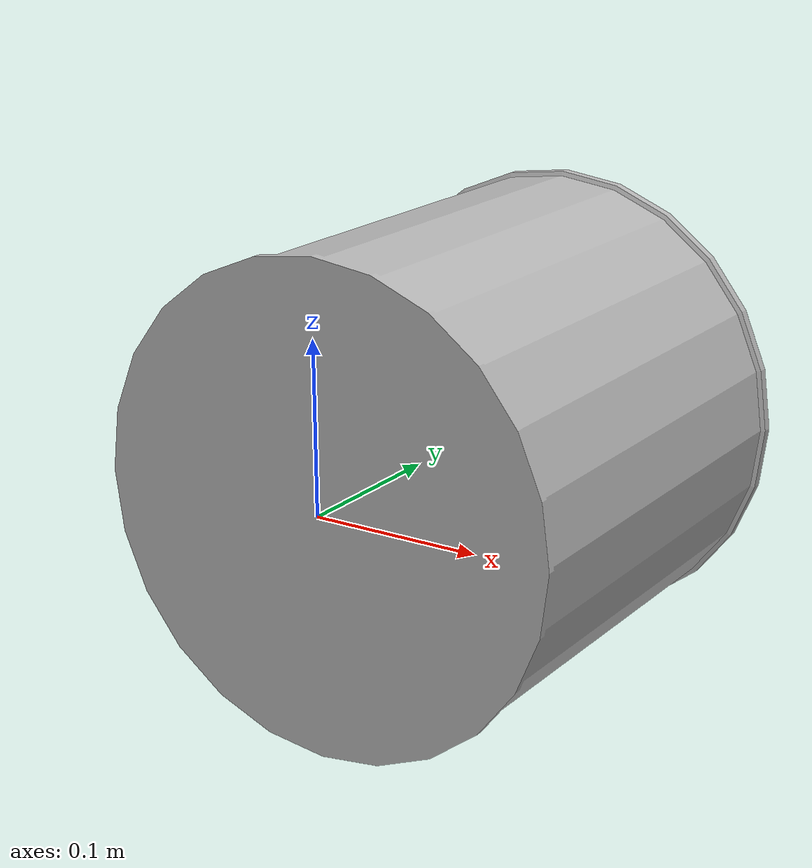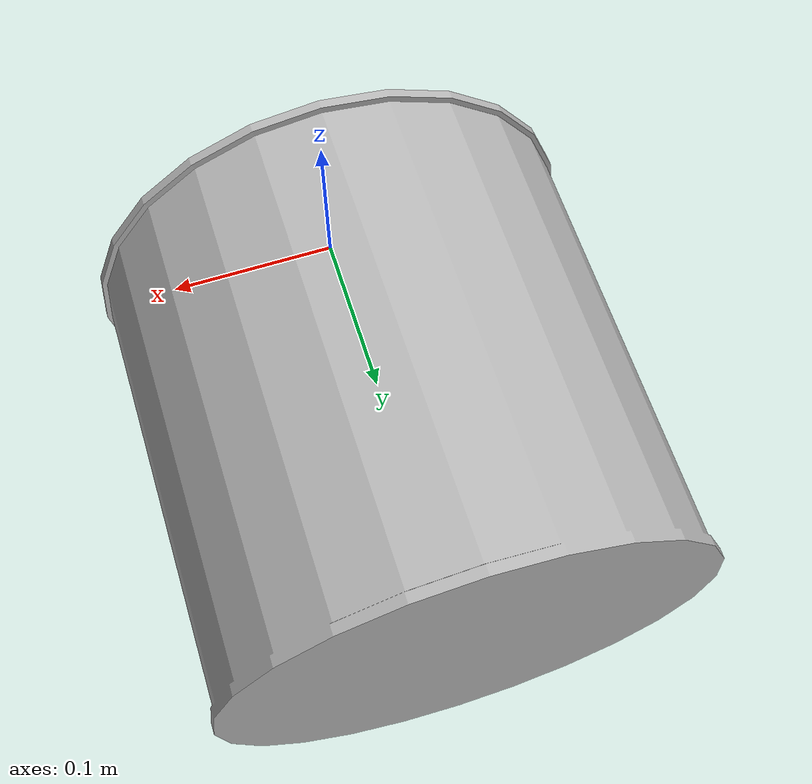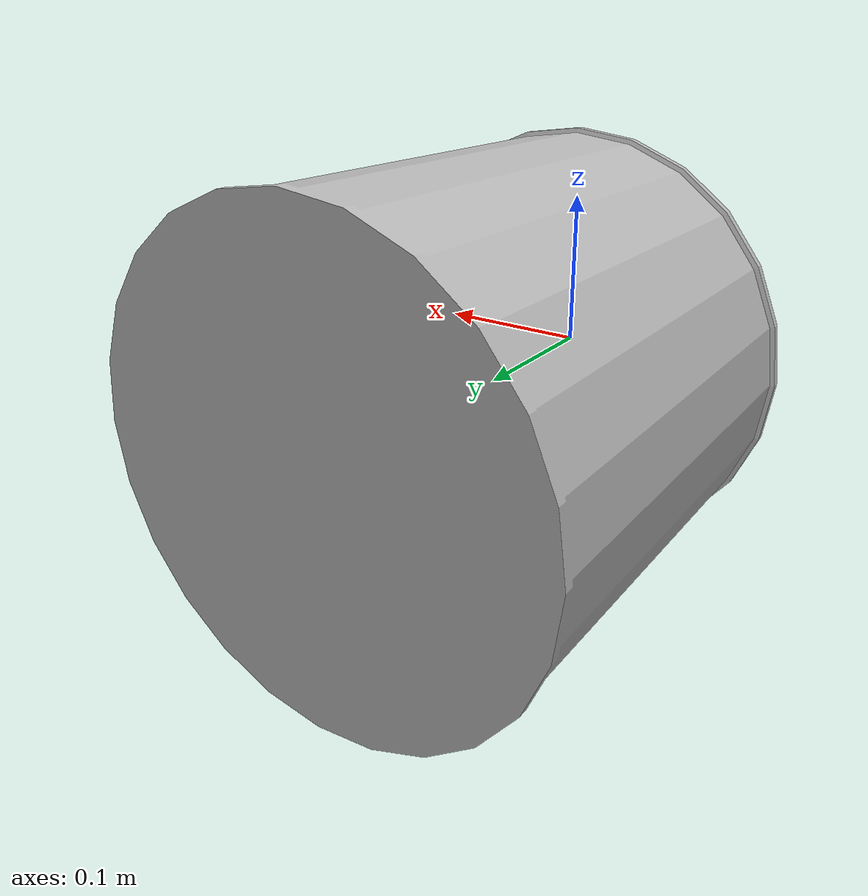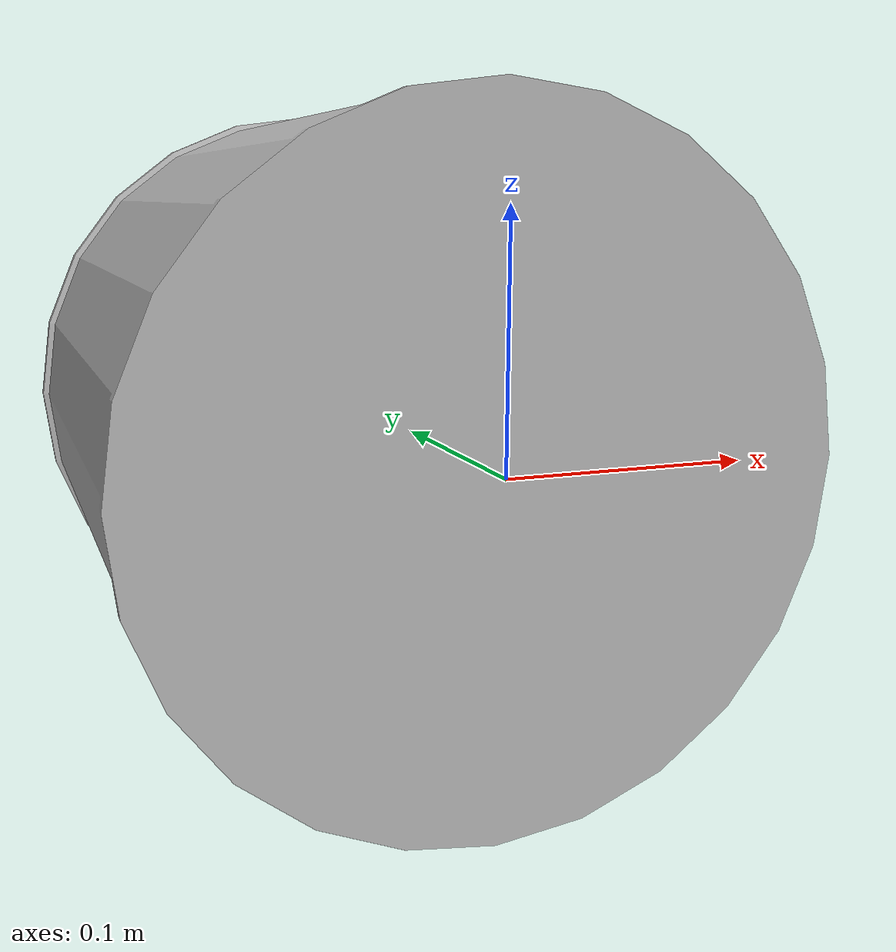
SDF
<?xml version="1.0" ?>
<sdf version="1.4">
  <model name="shelf2_metal2_1a">
    <link name="body">
      <pose>0 0 0 0 0 0</pose>
      <inertial>
        <pose>  -0.001000   0.136001  -0.001000 0 0 0</pose>
        <mass>0.5</mass>
        <inertia>
          <ixx>0.01</ixx>
          <ixy>0</ixy>
          <ixz>0</ixz>
          <iyy>0.01</iyy>
          <iyz>0</iyz>
          <izz>0.01</izz>
        </inertia>
      </inertial>
      <collision name="collision">
        <geometry>
          <mesh>
            <uri>model://bookshelf/shelf2_items/metal2_1a/metal2_1a.dae</uri>
          </mesh>
        </geometry>
      </collision>
      <visual name="visual">
        <geometry>
          <mesh>
            <uri>model://bookshelf/shelf2_items/metal2_1a/metal2_1a.dae</uri>
          </mesh>
        </geometry>
      </visual>
    </link>
  </model>
</sdf>
